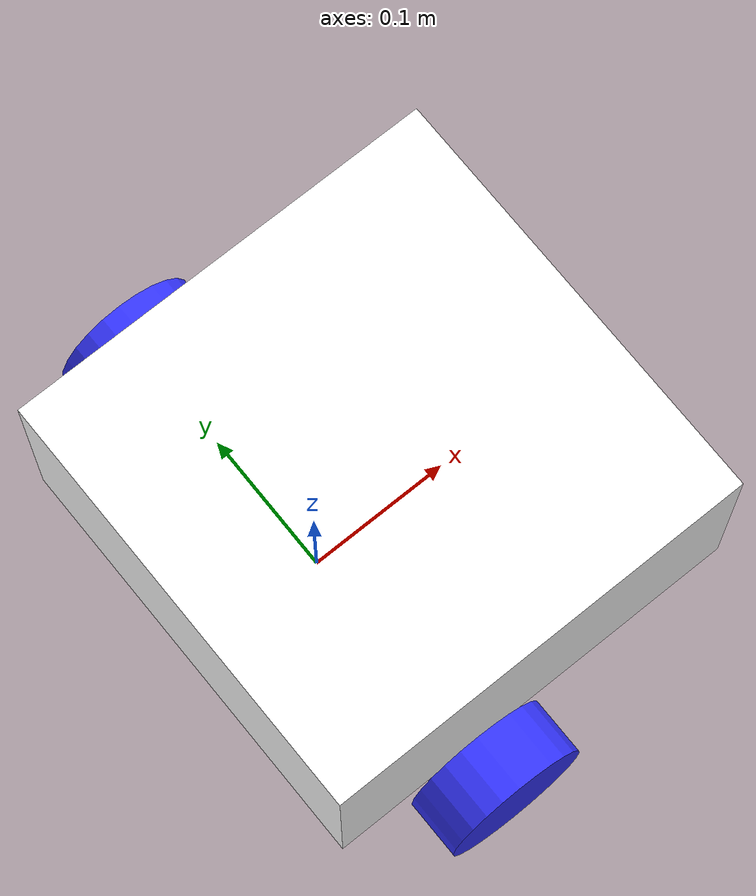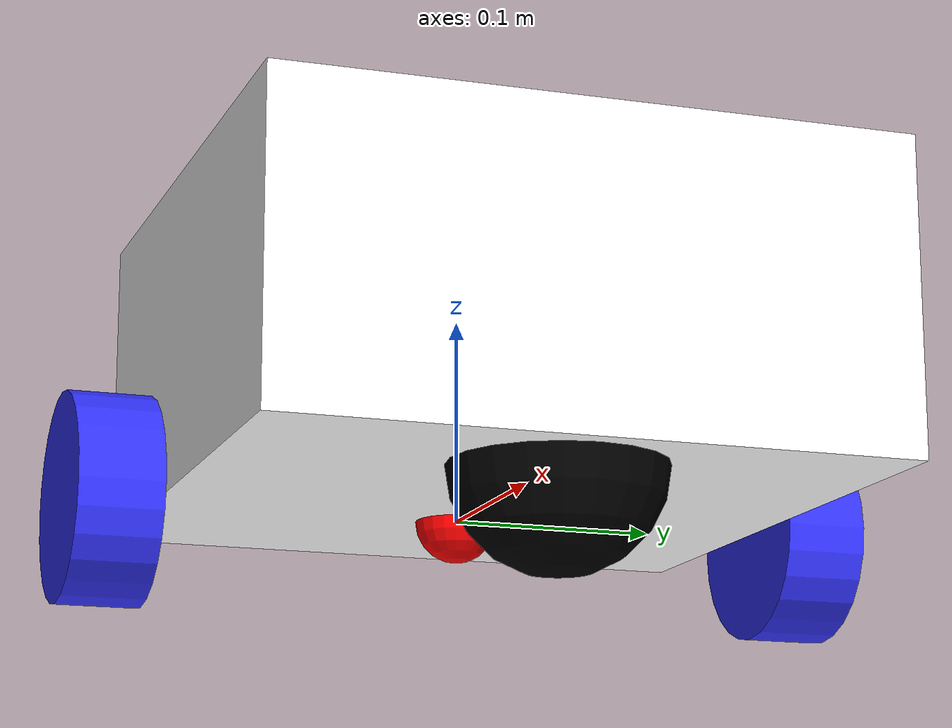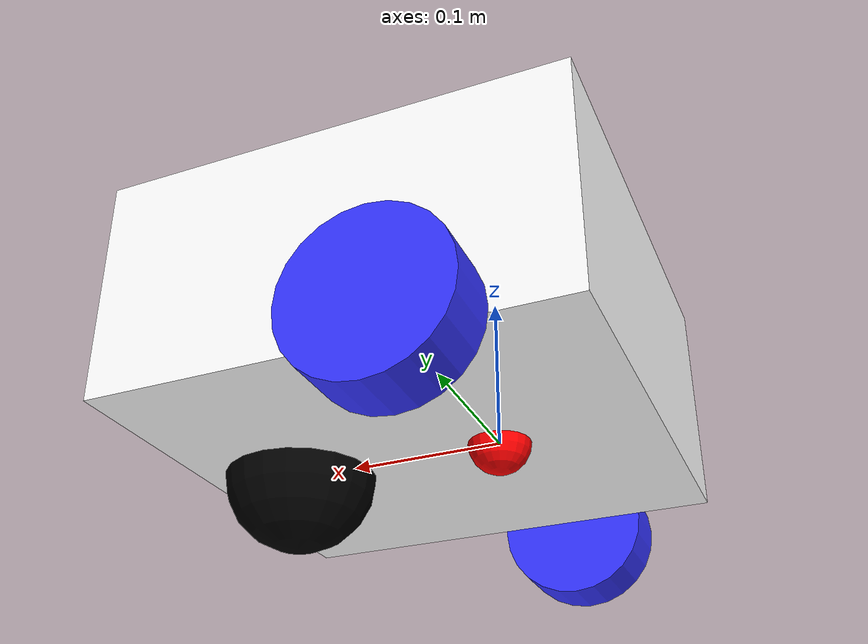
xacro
<?xml version="1.0"?>
<robot xmlns:xacro="http://www.ros.org/wiki/xacro" name="robot">

  <!-- Absolute include so it also works from install/share paths -->
  <xacro:include filename="$(find cartographer_bringup)/description/inertial_macros.xacro"/>

  <!-- ===== Materials ===== -->
  <material name="white"><color rgba="1 1 1 1"/></material>
  <material name="orange"><color rgba="1 0.3 0.1 1"/></material>
  <material name="blue"><color rgba="0.2 0.2 1 1"/></material>
  <material name="black"><color rgba="0 0 0 1"/></material>
  <material name="red"><color rgba="1 0 0 1"/></material>

  <!-- ===== Base frame (visual origin helper) ===== -->
  <link name="base_link">
    <visual>
      <origin xyz="0 0 0" rpy="0 0 0"/>
      <geometry><sphere radius="0.02"/></geometry>
      <material name="red"/>
    </visual>
  </link>

  <!-- base_footprint -->
  <joint name="base_footprint_joint" type="fixed">
    <parent link="base_link"/>
    <child  link="base_footprint"/>
    <origin xyz="0 0 0" rpy="0 0 0"/>
  </joint>
  <link name="base_footprint"/>

  <!-- ===== Chassis ===== -->
  <joint name="base_to_chassis" type="fixed">
    <parent link="base_link"/>
    <child  link="chassis"/>
    <origin xyz="-0.1 0 0"/>
  </joint>

  <link name="chassis">
    <visual>
      <origin xyz="0.15 0 0.075" rpy="0 0 0"/>
      <geometry><box size="0.3 0.3 0.15"/></geometry>
      <material name="white"/>
    </visual>
    <collision>
      <origin xyz="0.15 0 0.075"/>
      <geometry><box size="0.3 0.3 0.15"/></geometry>
    </collision>
    <xacro:inertial_box mass="0.5" x="0.3" y="0.3" z="0.15">
      <origin xyz="0.15 0 0.075" rpy="0 0 0"/>
    </xacro:inertial_box>
  </link>

  <gazebo reference="chassis">
    <material>Gazebo/White</material>
  </gazebo>

  <!-- ===== Left wheel ===== -->
  <joint name="left_wheel_joint" type="continuous">
    <parent link="base_link"/>
    <child  link="left_wheel"/>
    <origin xyz="0 0.175 0" rpy="-${pi/2} 0 0"/>
    <axis xyz="0 0 1"/>
  </joint>

  <link name="left_wheel">
    <visual>
      <geometry><cylinder length="0.04" radius="0.05"/></geometry>
      <material name="blue"/>
    </visual>
    <collision>
      <geometry><cylinder length="0.04" radius="0.05"/></geometry>
    </collision>
    <xacro:inertial_cylinder mass="0.1" length="0.04" radius="0.05">
      <origin xyz="0 0 0" rpy="0 0 0"/>
    </xacro:inertial_cylinder>
  </link>

  <gazebo reference="left_wheel">
    <material>Gazebo/Blue</material>
  </gazebo>

  <!-- ===== Right wheel ===== -->
  <joint name="right_wheel_joint" type="continuous">
    <parent link="base_link"/>
    <child  link="right_wheel"/>
    <origin xyz="0 -0.175 0" rpy="${pi/2} 0 0"/>
    <axis xyz="0 0 -1"/>
  </joint>

  <link name="right_wheel">
    <visual>
      <geometry><cylinder length="0.04" radius="0.05"/></geometry>
      <material name="blue"/>
    </visual>
    <collision>
      <geometry><cylinder length="0.04" radius="0.05"/></geometry>
    </collision>
    <xacro:inertial_cylinder mass="0.1" length="0.04" radius="0.05">
      <origin xyz="0 0 0" rpy="0 0 0"/>
    </xacro:inertial_cylinder>
  </link>

  <gazebo reference="right_wheel">
    <material>Gazebo/Blue</material>
  </gazebo>

  <!-- ===== Caster wheel ===== -->
  <joint name="caster_wheel_joint" type="fixed">
    <parent link="chassis"/>
    <child  link="caster_wheel"/>
    <origin xyz="0.24 0 0" rpy="0 0 0"/>
  </joint>

  <link name="caster_wheel">
    <visual>
      <geometry><sphere radius="0.05"/></geometry>
      <material name="black"/>
    </visual>
    <collision>
      <geometry><sphere radius="0.05"/></geometry>
    </collision>
    <xacro:inertial_sphere mass="0.1" radius="0.05">
      <origin xyz="0 0 0" rpy="0 0 0"/>
    </xacro:inertial_sphere>
  </link>

  <gazebo reference="caster_wheel">
    <material>Gazebo/Black</material>
    <mu1 value="0.001"/>
    <mu2 value="0.001"/>
  </gazebo>

</robot>

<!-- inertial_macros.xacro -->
<robot xmlns:xacro="http://www.ros.org/wiki/xacro">

  <xacro:macro name="inertial_sphere" params="mass radius *origin">
    <inertial>
      <xacro:insert_block name="origin"/>
      <mass value="${mass}"/>
      <inertia
        ixx="${(2/5) * mass * (radius*radius)}" ixy="0" ixz="0"
        iyy="${(2/5) * mass * (radius*radius)}" iyz="0"
        izz="${(2/5) * mass * (radius*radius)}"/>
    </inertial>
  </xacro:macro>

  <xacro:macro name="inertial_box" params="mass x y z *origin">
    <inertial>
      <xacro:insert_block name="origin"/>
      <mass value="${mass}"/>
      <inertia
        ixx="${(1/12) * mass * (y*y + z*z)}" ixy="0" ixz="0"
        iyy="${(1/12) * mass * (x*x + z*z)}" iyz="0"
        izz="${(1/12) * mass * (x*x + y*y)}"/>
    </inertial>
  </xacro:macro>

  <!-- Cylinder aligned with Z axis -->
  <xacro:macro name="inertial_cylinder" params="mass length radius *origin">
    <inertial>
      <xacro:insert_block name="origin"/>
      <mass value="${mass}"/>
      <inertia
        ixx="${(1/12) * mass * (3*radius*radius + length*length)}" ixy="0" ixz="0"
        iyy="${(1/12) * mass * (3*radius*radius + length*length)}" iyz="0"
        izz="${(1/2)  * mass * (radius*radius)}"/>
    </inertial>
  </xacro:macro>

</robot>
